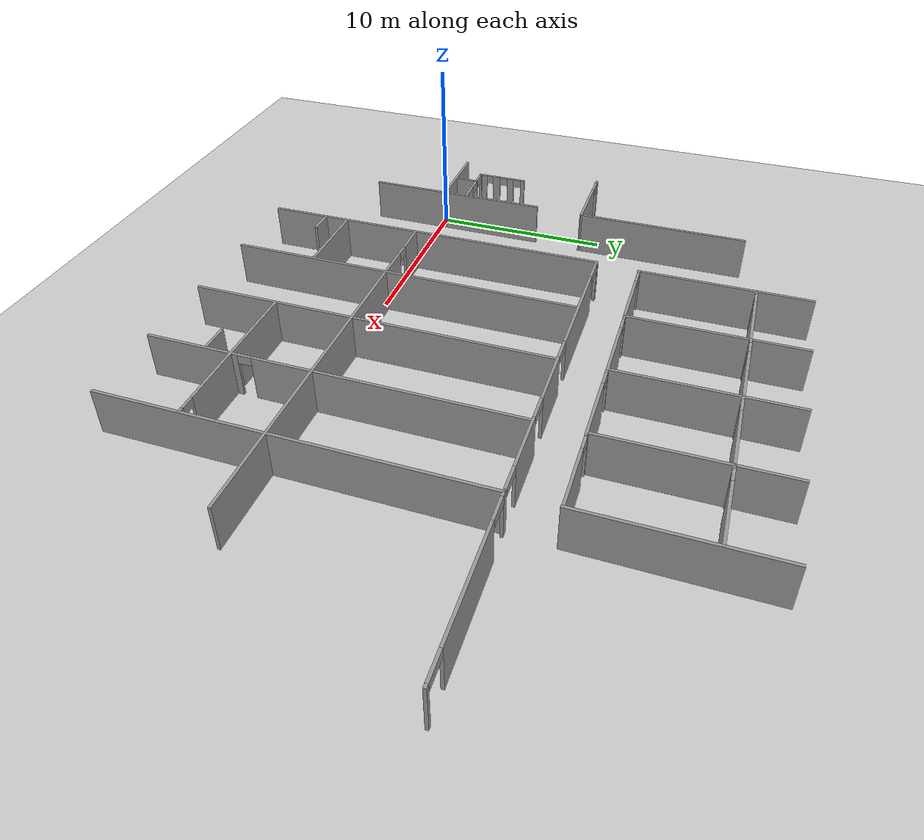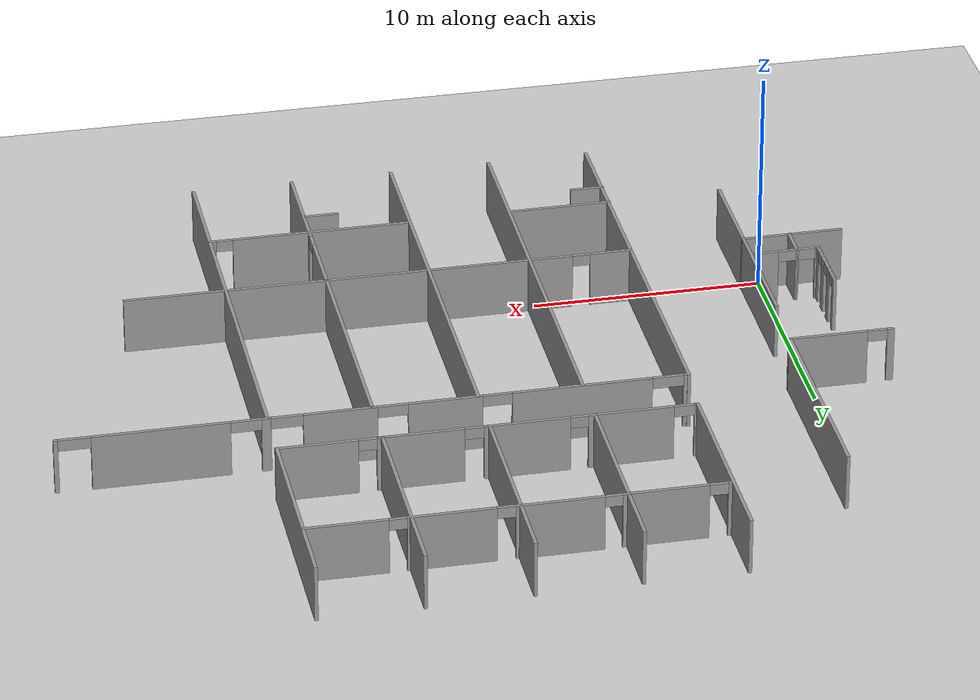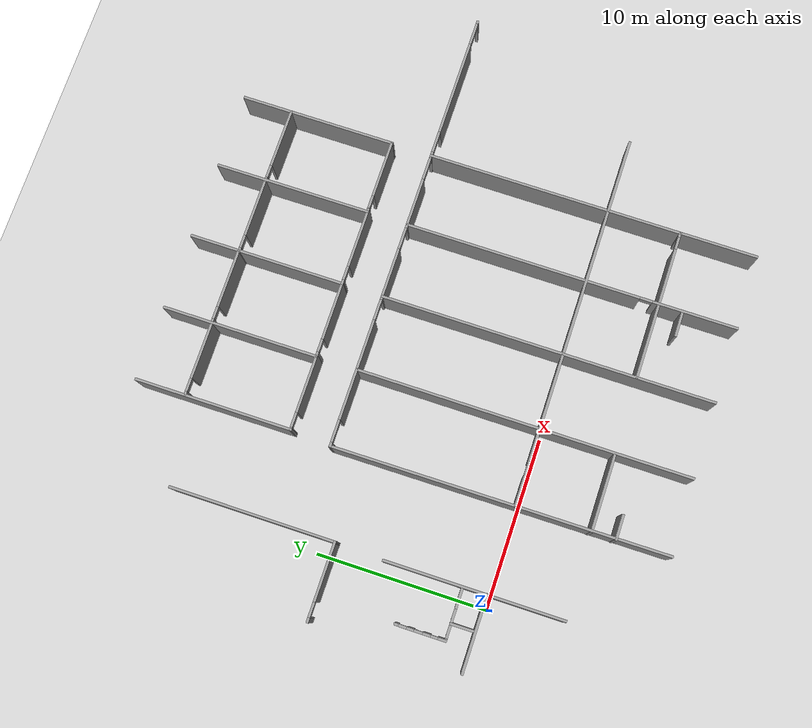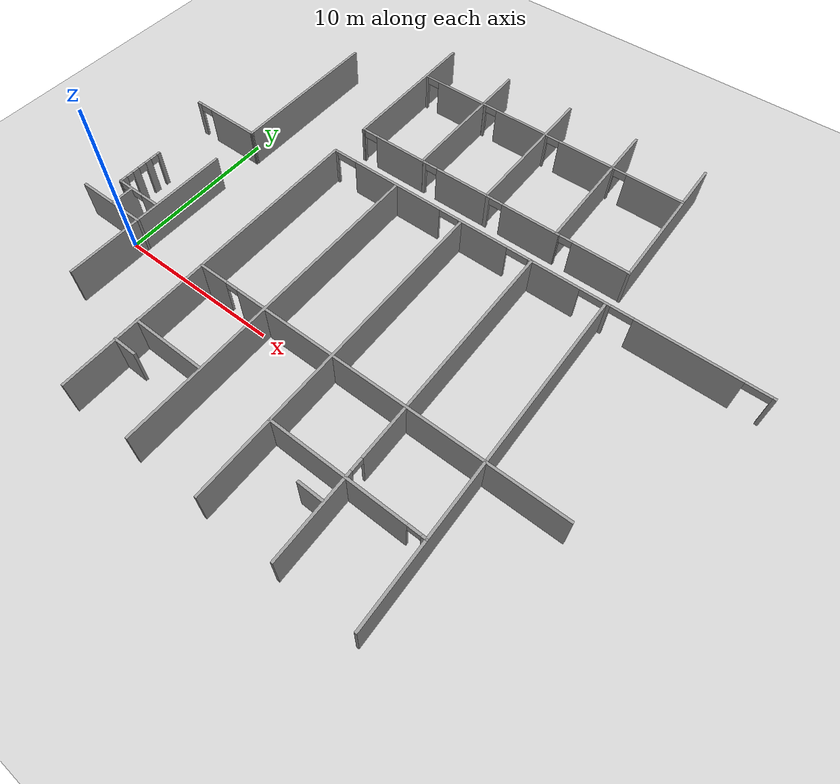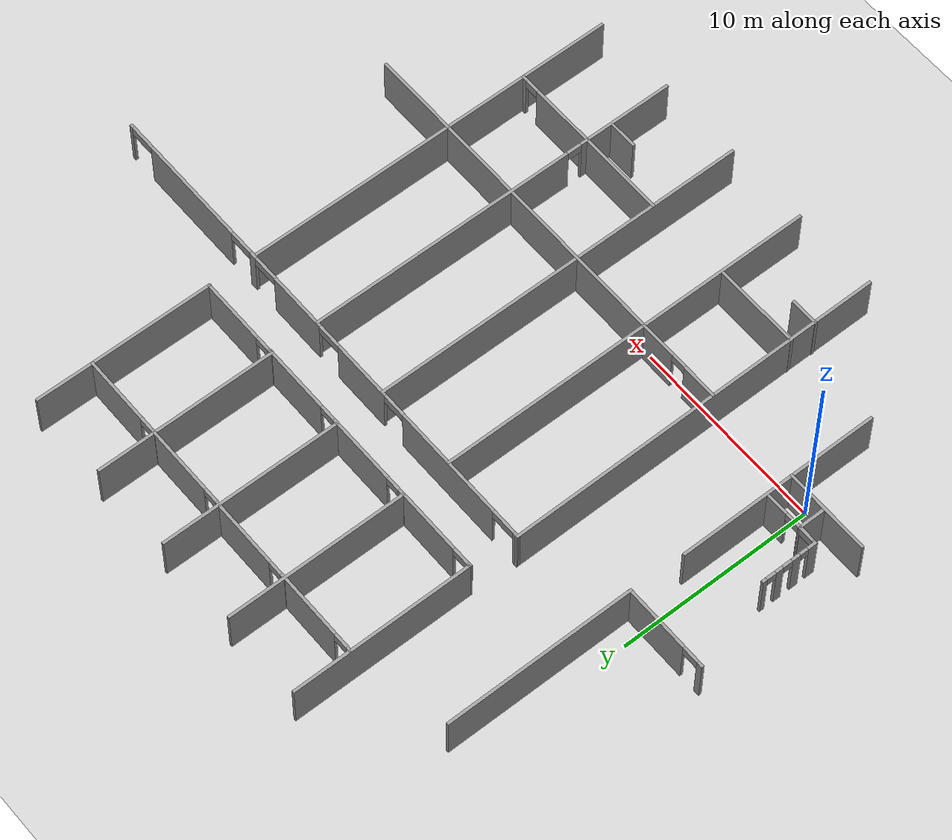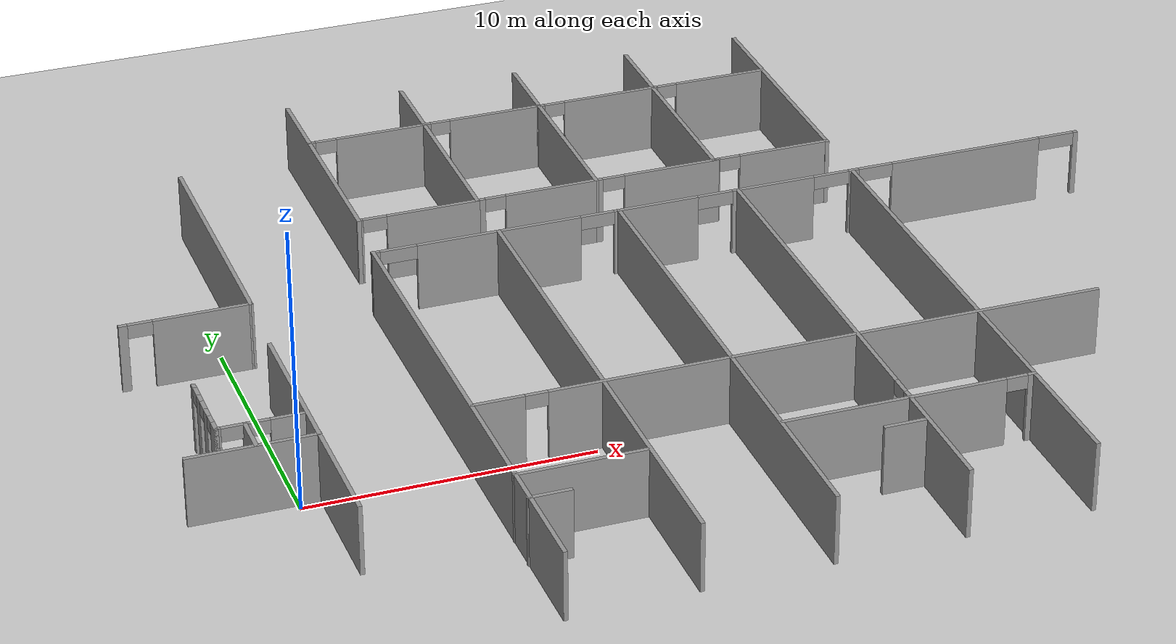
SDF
<sdf version="1.7">
 <world name="default">
  <model name="ground_plane">
   <static>1</static>
   <link name="link">
    <collision name="collision">
     <geometry><plane><normal>0 0 1</normal><size>100 100</size></plane></geometry>
     <surface>
      <contact><collide_bitmask>65535</collide_bitmask></contact>
      <friction><ode><mu>100</mu><mu2>50</mu2></ode></friction>
     </surface>
    </collision>
    <visual name="visual">
     <cast_shadows>0</cast_shadows>
     <geometry><plane><normal>0 0 1</normal><size>100 100</size></plane></geometry>
     <material>
      <script><uri>file://media/materials/scripts/gazebo.material</uri><name>Gazebo/Grey</name></script>
     </material>
    </visual>
   </link>
  </model>
  <model name="anglo_3_andar">
   <pose>-0.36557 -0.844839 0 0 -0 0</pose>
   <link name="Wall_233">
    <collision name="Wall_233_Collision">
     <geometry><box><size>10.5 0.15 2.5</size></box></geometry>
     <pose>0 0 1.25 0 -0 0</pose>
    </collision>
    <visual name="Wall_233_Visual">
     <pose>0 0 1.25 0 -0 0</pose>
     <geometry><box><size>10.5 0.15 2.5</size></box></geometry>
     <material>
      <script><uri>file://media/materials/scripts/gazebo.material</uri><name>Gazebo/Grey</name></script>
      <ambient>1 1 1 1</ambient>
     </material>
     <meta><layer>0</layer></meta>
    </visual>
    <pose>1.14771 1.85868 0 0 -0 1.5708</pose>
   </link>
   <link name="Wall_266">
    <pose>-1.85229 3.92868 0 0 -0 -1.5708</pose>
    <visual name="Wall_266_Visual_0">
     <pose>-1.38 0 1.25 0 -0 0</pose>
     <geometry><box><size>0.24 0.15 2.5</size></box></geometry>
     <material>
      <script><uri>file://media/materials/scripts/gazebo.material</uri><name>Gazebo/Grey</name></script>
      <ambient>1 1 1 1</ambient>
     </material>
     <meta><layer>0</layer></meta>
    </visual>
    <collision name="Wall_266_Collision_0">
     <geometry><box><size>0.24 0.15 2.5</size></box></geometry>
     <pose>-1.38 0 1.25 0 -0 0</pose>
    </collision>
    <visual name="Wall_266_Visual_1">
     <pose>-0.575 0 1.25 0 -0 0</pose>
     <geometry><box><size>0.41 0.15 2.5</size></box></geometry>
     <material>
      <script><uri>file://media/materials/scripts/gazebo.material</uri><name>Gazebo/Grey</name></script>
      <ambient>1 1 1 1</ambient>
     </material>
     <meta><layer>0</layer></meta>
    </visual>
    <collision name="Wall_266_Collision_1">
     <geometry><box><size>0.41 0.15 2.5</size></box></geometry>
     <pose>-0.575 0 1.25 0 -0 0</pose>
    </collision>
    <visual name="Wall_266_Visual_2">
     <pose>0.3525 0 1.25 0 -0 0</pose>
     <geometry><box><size>0.445 0.15 2.5</size></box></geometry>
     <material>
      <script><uri>file://media/materials/scripts/gazebo.material</uri><name>Gazebo/Grey</name></script>
      <ambient>1 1 1 1</ambient>
     </material>
     <meta><layer>0</layer></meta>
    </visual>
    <collision name="Wall_266_Collision_2">
     <geometry><box><size>0.445 0.15 2.5</size></box></geometry>
     <pose>0.3525 0 1.25 0 -0 0</pose>
    </collision>
    <visual name="Wall_266_Visual_3">
     <pose>1.2475 0 1.25 0 -0 0</pose>
     <geometry><box><size>0.505 0.15 2.5</size></box></geometry>
     <material>
      <script><uri>file://media/materials/scripts/gazebo.material</uri><name>Gazebo/Grey</name></script>
      <ambient>1 1 1 1</ambient>
     </material>
     <meta><layer>0</layer></meta>
    </visual>
    <collision name="Wall_266_Collision_3">
     <geometry><box><size>0.505 0.15 2.5</size></box></geometry>
     <pose>1.2475 0 1.25 0 -0 0</pose>
    </collision>
    <visual name="Wall_266_Visual_4">
     <pose>-1.02 0 2.25 0 -0 0</pose>
     <geometry><box><size>0.48 0.15 0.5</size></box></geometry>
     <material>
      <script><uri>file://media/materials/scripts/gazebo.material</uri><name>Gazebo/Grey</name></script>
      <ambient>1 1 1 1</ambient>
     </material>
     <meta><layer>0</layer></meta>
    </visual>
    <collision name="Wall_266_Collision_4">
     <geometry><box><size>0.48 0.15 0.5</size></box></geometry>
     <pose>-1.02 0 2.25 0 -0 0</pose>
    </collision>
    <visual name="Wall_266_Visual_5">
     <pose>-0.12 0 2.25 0 -0 0</pose>
     <geometry><box><size>0.5 0.15 0.5</size></box></geometry>
     <material>
      <script><uri>file://media/materials/scripts/gazebo.material</uri><name>Gazebo/Grey</name></script>
      <ambient>1 1 1 1</ambient>
     </material>
     <meta><layer>0</layer></meta>
    </visual>
    <collision name="Wall_266_Collision_5">
     <geometry><box><size>0.5 0.15 0.5</size></box></geometry>
     <pose>-0.12 0 2.25 0 -0 0</pose>
    </collision>
    <visual name="Wall_266_Visual_6">
     <pose>0.785 0 2.25 0 -0 0</pose>
     <geometry><box><size>0.42 0.15 0.5</size></box></geometry>
     <material>
      <script><uri>file://media/materials/scripts/gazebo.material</uri><name>Gazebo/Grey</name></script>
      <ambient>1 1 1 1</ambient>
     </material>
     <meta><layer>0</layer></meta>
    </visual>
    <collision name="Wall_266_Collision_6">
     <geometry><box><size>0.42 0.15 0.5</size></box></geometry>
     <pose>0.785 0 2.25 0 -0 0</pose>
    </collision>
   </link>
   <link name="Wall_268">
    <pose>-0.427293 2.50368 0 0 -0 0</pose>
    <visual name="Wall_268_Visual_0">
     <pose>-1.39 0 1.25 0 -0 0</pose>
     <geometry><box><size>0.22 0.15 2.5</size></box></geometry>
     <material>
      <script><uri>file://media/materials/scripts/gazebo.material</uri><name>Gazebo/Grey</name></script>
      <ambient>1 1 1 1</ambient>
     </material>
     <meta><layer>0</layer></meta>
    </visual>
    <collision name="Wall_268_Collision_0">
     <geometry><box><size>0.22 0.15 2.5</size></box></geometry>
     <pose>-1.39 0 1.25 0 -0 0</pose>
    </collision>
    <visual name="Wall_268_Visual_1">
     <pose>-0.47 0 1.25 0 -0 0</pose>
     <geometry><box><size>0.1 0.15 2.5</size></box></geometry>
     <material>
      <script><uri>file://media/materials/scripts/gazebo.material</uri><name>Gazebo/Grey</name></script>
      <ambient>1 1 1 1</ambient>
     </material>
     <meta><layer>0</layer></meta>
    </visual>
    <collision name="Wall_268_Collision_1">
     <geometry><box><size>0.1 0.15 2.5</size></box></geometry>
     <pose>-0.47 0 1.25 0 -0 0</pose>
    </collision>
    <visual name="Wall_268_Visual_2">
     <pose>0.925 0 1.25 0 -0 0</pose>
     <geometry><box><size>1.15 0.15 2.5</size></box></geometry>
     <material>
      <script><uri>file://media/materials/scripts/gazebo.material</uri><name>Gazebo/Grey</name></script>
      <ambient>1 1 1 1</ambient>
     </material>
     <meta><layer>0</layer></meta>
    </visual>
    <collision name="Wall_268_Collision_2">
     <geometry><box><size>1.15 0.15 2.5</size></box></geometry>
     <pose>0.925 0 1.25 0 -0 0</pose>
    </collision>
    <visual name="Wall_268_Visual_3">
     <pose>-0.9 0 2.25 0 -0 0</pose>
     <geometry><box><size>0.76 0.15 0.5</size></box></geometry>
     <material>
      <script><uri>file://media/materials/scripts/gazebo.material</uri><name>Gazebo/Grey</name></script>
      <ambient>1 1 1 1</ambient>
     </material>
     <meta><layer>0</layer></meta>
    </visual>
    <collision name="Wall_268_Collision_3">
     <geometry><box><size>0.76 0.15 0.5</size></box></geometry>
     <pose>-0.9 0 2.25 0 -0 0</pose>
    </collision>
    <visual name="Wall_268_Visual_4">
     <pose>-0.035 0 2.25 0 -0 0</pose>
     <geometry><box><size>0.77 0.15 0.5</size></box></geometry>
     <material>
      <script><uri>file://media/materials/scripts/gazebo.material</uri><name>Gazebo/Grey</name></script>
      <ambient>1 1 1 1</ambient>
     </material>
     <meta><layer>0</layer></meta>
    </visual>
    <collision name="Wall_268_Collision_4">
     <geometry><box><size>0.77 0.15 0.5</size></box></geometry>
     <pose>-0.035 0 2.25 0 -0 0</pose>
    </collision>
   </link>
   <link name="Wall_270">
    <collision name="Wall_270_Collision">
     <geometry><box><size>1.5 0.15 2.5</size></box></geometry>
     <pose>0 0 1.25 0 -0 0</pose>
    </collision>
    <visual name="Wall_270_Visual">
     <pose>0 0 1.25 0 -0 0</pose>
     <geometry><box><size>1.5 0.15 2.5</size></box></geometry>
     <material>
      <script><uri>file://media/materials/scripts/gazebo.material</uri><name>Gazebo/Grey</name></script>
      <ambient>1 1 1 1</ambient>
     </material>
     <meta><layer>0</layer></meta>
    </visual>
    <pose>-0.902293 1.82868 0 0 -0 -1.5708</pose>
   </link>
   <link name="Wall_272">
    <collision name="Wall_272_Collision">
     <geometry><box><size>4.5 0.15 2.5</size></box></geometry>
     <pose>0 0 1.25 0 -0 0</pose>
    </collision>
    <visual name="Wall_272_Visual">
     <pose>0 0 1.25 0 -0 0</pose>
     <geometry><box><size>4.5 0.15 2.5</size></box></geometry>
     <material>
      <script><uri>file://media/materials/scripts/gazebo.material</uri><name>Gazebo/Grey</name></script>
      <ambient>1 1 1 1</ambient>
     </material>
     <meta><layer>0</layer></meta>
    </visual>
    <pose>-1.01729 1.12368 0 0 -0 0</pose>
   </link>
   <link name="Wall_38">
    <collision name="Wall_38_Collision">
     <geometry><box><size>9.25 0.15 2.5</size></box></geometry>
     <pose>0 0 1.25 0 -0 0</pose>
    </collision>
    <visual name="Wall_38_Visual">
     <pose>0 0 1.25 0 -0 0</pose>
     <geometry><box><size>9.25 0.15 2.5</size></box></geometry>
     <material>
      <script><uri>file://media/materials/scripts/gazebo.material</uri><name>Gazebo/Grey</name></script>
      <ambient>1 1 1 1</ambient>
     </material>
     <meta><layer>0</layer></meta>
    </visual>
    <pose>23.9777 18.8137 0 0 -0 -1.5708</pose>
   </link>
   <link name="Wall_46">
    <collision name="Wall_46_Collision">
     <geometry><box><size>9.25 0.15 2.5</size></box></geometry>
     <pose>0 0 1.25 0 -0 0</pose>
    </collision>
    <visual name="Wall_46_Visual">
     <pose>0 0 1.25 0 -0 0</pose>
     <geometry><box><size>9.25 0.15 2.5</size></box></geometry>
     <material>
      <script><uri>file://media/materials/scripts/gazebo.material</uri><name>Gazebo/Grey</name></script>
      <ambient>1 1 1 1</ambient>
     </material>
     <meta><layer>0</layer></meta>
    </visual>
    <pose>19.5777 18.8337 0 0 -0 -1.5686</pose>
   </link>
   <link name="Wall_506">
    <pose>19.4577 11.8537 0 0 -0 -3.14084</pose>
    <visual name="Wall_506_Visual_0">
     <pose>-13.3091 0 1.25 0 -0 0</pose>
     <geometry><box><size>0.191801 0.15 2.5</size></box></geometry>
     <material>
      <script><uri>file://media/materials/scripts/gazebo.material</uri><name>Gazebo/Grey</name></script>
      <ambient>1 1 1 1</ambient>
     </material>
     <meta><layer>0</layer></meta>
    </visual>
    <collision name="Wall_506_Collision_0">
     <geometry><box><size>0.191801 0.15 2.5</size></box></geometry>
     <pose>-13.3091 0 1.25 0 -0 0</pose>
    </collision>
    <visual name="Wall_506_Visual_1">
     <pose>-8.94267 0 1.25 0 -0 0</pose>
     <geometry><box><size>5.80105 0.15 2.5</size></box></geometry>
     <material>
      <script><uri>file://media/materials/scripts/gazebo.material</uri><name>Gazebo/Grey</name></script>
      <ambient>1 1 1 1</ambient>
     </material>
     <meta><layer>0</layer></meta>
    </visual>
    <collision name="Wall_506_Collision_1">
     <geometry><box><size>5.80105 0.15 2.5</size></box></geometry>
     <pose>-8.94267 0 1.25 0 -0 0</pose>
    </collision>
    <visual name="Wall_506_Visual_2">
     <pose>-4.55522 0 1.25 0 -0 0</pose>
     <geometry><box><size>0.393856 0.15 2.5</size></box></geometry>
     <material>
      <script><uri>file://media/materials/scripts/gazebo.material</uri><name>Gazebo/Grey</name></script>
      <ambient>1 1 1 1</ambient>
     </material>
     <meta><layer>0</layer></meta>
    </visual>
    <collision name="Wall_506_Collision_2">
     <geometry><box><size>0.393856 0.15 2.5</size></box></geometry>
     <pose>-4.55522 0 1.25 0 -0 0</pose>
    </collision>
    <visual name="Wall_506_Visual_3">
     <pose>-1.45079 0 1.25 0 -0 0</pose>
     <geometry><box><size>3.11499 0.15 2.5</size></box></geometry>
     <material>
      <script><uri>file://media/materials/scripts/gazebo.material</uri><name>Gazebo/Grey</name></script>
      <ambient>1 1 1 1</ambient>
     </material>
     <meta><layer>0</layer></meta>
    </visual>
    <collision name="Wall_506_Collision_3">
     <geometry><box><size>3.11499 0.15 2.5</size></box></geometry>
     <pose>-1.45079 0 1.25 0 -0 0</pose>
    </collision>
    <visual name="Wall_506_Visual_4">
     <pose>2.98168 0 1.25 0 -0 0</pose>
     <geometry><box><size>3.14995 0.15 2.5</size></box></geometry>
     <material>
      <script><uri>file://media/materials/scripts/gazebo.material</uri><name>Gazebo/Grey</name></script>
      <ambient>1 1 1 1</ambient>
     </material>
     <meta><layer>0</layer></meta>
    </visual>
    <collision name="Wall_506_Collision_4">
     <geometry><box><size>3.14995 0.15 2.5</size></box></geometry>
     <pose>2.98168 0 1.25 0 -0 0</pose>
    </collision>
    <visual name="Wall_506_Visual_5">
     <pose>8.78482 0 1.25 0 -0 0</pose>
     <geometry><box><size>5.97634 0.15 2.5</size></box></geometry>
     <material>
      <script><uri>file://media/materials/scripts/gazebo.material</uri><name>Gazebo/Grey</name></script>
      <ambient>1 1 1 1</ambient>
     </material>
     <meta><layer>0</layer></meta>
    </visual>
    <collision name="Wall_506_Collision_5">
     <geometry><box><size>5.97634 0.15 2.5</size></box></geometry>
     <pose>8.78482 0 1.25 0 -0 0</pose>
    </collision>
    <visual name="Wall_506_Visual_6">
     <pose>13.254 0 1.25 0 -0 0</pose>
     <geometry><box><size>0.302005 0.15 2.5</size></box></geometry>
     <material>
      <script><uri>file://media/materials/scripts/gazebo.material</uri><name>Gazebo/Grey</name></script>
      <ambient>1 1 1 1</ambient>
     </material>
     <meta><layer>0</layer></meta>
    </visual>
    <collision name="Wall_506_Collision_6">
     <geometry><box><size>0.302005 0.15 2.5</size></box></geometry>
     <pose>13.254 0 1.25 0 -0 0</pose>
    </collision>
    <visual name="Wall_506_Visual_7">
     <pose>-12.5282 0 2.25 0 -0 0</pose>
     <geometry><box><size>1.37 0.15 0.5</size></box></geometry>
     <material>
      <script><uri>file://media/materials/scripts/gazebo.material</uri><name>Gazebo/Grey</name></script>
      <ambient>1 1 1 1</ambient>
     </material>
     <meta><layer>0</layer></meta>
    </visual>
    <collision name="Wall_506_Collision_7">
     <geometry><box><size>1.37 0.15 0.5</size></box></geometry>
     <pose>-12.5282 0 2.25 0 -0 0</pose>
    </collision>
    <visual name="Wall_506_Visual_8">
     <pose>-5.39715 0 2.25 0 -0 0</pose>
     <geometry><box><size>1.29 0.15 0.5</size></box></geometry>
     <material>
      <script><uri>file://media/materials/scripts/gazebo.material</uri><name>Gazebo/Grey</name></script>
      <ambient>1 1 1 1</ambient>
     </material>
     <meta><layer>0</layer></meta>
    </visual>
    <collision name="Wall_506_Collision_8">
     <geometry><box><size>1.29 0.15 0.5</size></box></geometry>
     <pose>-5.39715 0 2.25 0 -0 0</pose>
    </collision>
    <visual name="Wall_506_Visual_9">
     <pose>-3.68329 0 2.25 0 -0 0</pose>
     <geometry><box><size>1.35 0.15 0.5</size></box></geometry>
     <material>
      <script><uri>file://media/materials/scripts/gazebo.material</uri><name>Gazebo/Grey</name></script>
      <ambient>1 1 1 1</ambient>
     </material>
     <meta><layer>0</layer></meta>
    </visual>
    <collision name="Wall_506_Collision_9">
     <geometry><box><size>1.35 0.15 0.5</size></box></geometry>
     <pose>-3.68329 0 2.25 0 -0 0</pose>
    </collision>
    <visual name="Wall_506_Visual_10">
     <pose>0.756703 0 2.25 0 -0 0</pose>
     <geometry><box><size>1.3 0.15 0.5</size></box></geometry>
     <material>
      <script><uri>file://media/materials/scripts/gazebo.material</uri><name>Gazebo/Grey</name></script>
      <ambient>1 1 1 1</ambient>
     </material>
     <meta><layer>0</layer></meta>
    </visual>
    <collision name="Wall_506_Collision_10">
     <geometry><box><size>1.3 0.15 0.5</size></box></geometry>
     <pose>0.756703 0 2.25 0 -0 0</pose>
    </collision>
    <visual name="Wall_506_Visual_11">
     <pose>5.17665 0 2.25 0 -0 0</pose>
     <geometry><box><size>1.24 0.15 0.5</size></box></geometry>
     <material>
      <script><uri>file://media/materials/scripts/gazebo.material</uri><name>Gazebo/Grey</name></script>
      <ambient>1 1 1 1</ambient>
     </material>
     <meta><layer>0</layer></meta>
    </visual>
    <collision name="Wall_506_Collision_11">
     <geometry><box><size>1.24 0.15 0.5</size></box></geometry>
     <pose>5.17665 0 2.25 0 -0 0</pose>
    </collision>
    <visual name="Wall_506_Visual_12">
     <pose>12.438 0 2.25 0 -0 0</pose>
     <geometry><box><size>1.33 0.15 0.5</size></box></geometry>
     <material>
      <script><uri>file://media/materials/scripts/gazebo.material</uri><name>Gazebo/Grey</name></script>
      <ambient>1 1 1 1</ambient>
     </material>
     <meta><layer>0</layer></meta>
    </visual>
    <collision name="Wall_506_Collision_12">
     <geometry><box><size>1.33 0.15 0.5</size></box></geometry>
     <pose>12.438 0 2.25 0 -0 0</pose>
    </collision>
   </link>
   <link name="Wall_508">
    <collision name="Wall_508_Collision">
     <geometry><box><size>19.8202 0.15 2.5</size></box></geometry>
     <pose>0 0 1.25 0 -0 0</pose>
    </collision>
    <visual name="Wall_508_Visual">
     <pose>0 0 1.25 0 -0 0</pose>
     <geometry><box><size>19.8202 0.15 2.5</size></box></geometry>
     <material>
      <script><uri>file://media/materials/scripts/gazebo.material</uri><name>Gazebo/Grey</name></script>
      <ambient>1 1 1 1</ambient>
     </material>
     <meta><layer>0</layer></meta>
    </visual>
    <pose>6.17271 2.01868 0 0 -0 -1.56622</pose>
   </link>
   <link name="Wall_533">
    <collision name="Wall_533_Collision">
     <geometry><box><size>19.75 0.15 2.5</size></box></geometry>
     <pose>0 0 1.25 0 -0 0</pose>
    </collision>
    <visual name="Wall_533_Visual">
     <pose>0 0 1.25 0 -0 0</pose>
     <geometry><box><size>19.75 0.15 2.5</size></box></geometry>
     <material>
      <script><uri>file://media/materials/scripts/gazebo.material</uri><name>Gazebo/Grey</name></script>
      <ambient>1 1 1 1</ambient>
     </material>
     <meta><layer>0</layer></meta>
    </visual>
    <pose>23.9577 2.05368 0 0 -0 -1.5708</pose>
   </link>
   <link name="Wall_535">
    <pose>17.2677 1.10368 0 0 -0 0</pose>
    <visual name="Wall_535_Visual_0">
     <pose>-10.205 0 1.25 0 -0 0</pose>
     <geometry><box><size>1.84 0.15 2.5</size></box></geometry>
     <material>
      <script><uri>file://media/materials/scripts/gazebo.material</uri><name>Gazebo/Grey</name></script>
      <ambient>1 1 1 1</ambient>
     </material>
     <meta><layer>0</layer></meta>
    </visual>
    <collision name="Wall_535_Collision_0">
     <geometry><box><size>1.84 0.15 2.5</size></box></geometry>
     <pose>-10.205 0 1.25 0 -0 0</pose>
    </collision>
    <visual name="Wall_535_Visual_1">
     <pose>1.31 0 1.25 0 -0 0</pose>
     <geometry><box><size>19.63 0.15 2.5</size></box></geometry>
     <material>
      <script><uri>file://media/materials/scripts/gazebo.material</uri><name>Gazebo/Grey</name></script>
      <ambient>1 1 1 1</ambient>
     </material>
     <meta><layer>0</layer></meta>
    </visual>
    <collision name="Wall_535_Collision_1">
     <geometry><box><size>19.63 0.15 2.5</size></box></geometry>
     <pose>1.31 0 1.25 0 -0 0</pose>
    </collision>
    <visual name="Wall_535_Visual_2">
     <pose>-8.895 0 2.25 0 -0 0</pose>
     <geometry><box><size>0.78 0.15 0.5</size></box></geometry>
     <material>
      <script><uri>file://media/materials/scripts/gazebo.material</uri><name>Gazebo/Grey</name></script>
      <ambient>1 1 1 1</ambient>
     </material>
     <meta><layer>0</layer></meta>
    </visual>
    <collision name="Wall_535_Collision_2">
     <geometry><box><size>0.78 0.15 0.5</size></box></geometry>
     <pose>-8.895 0 2.25 0 -0 0</pose>
    </collision>
   </link>
   <link name="Wall_537">
    <pose>19.5677 2.01368 0 0 -0 -1.5708</pose>
    <visual name="Wall_537_Visual_0">
     <pose>-2.89 0 1.25 0 -0 0</pose>
     <geometry><box><size>13.97 0.15 2.5</size></box></geometry>
     <material>
      <script><uri>file://media/materials/scripts/gazebo.material</uri><name>Gazebo/Grey</name></script>
      <ambient>1 1 1 1</ambient>
     </material>
     <meta><layer>0</layer></meta>
    </visual>
    <collision name="Wall_537_Collision_0">
     <geometry><box><size>13.97 0.15 2.5</size></box></geometry>
     <pose>-2.89 0 1.25 0 -0 0</pose>
    </collision>
    <visual name="Wall_537_Visual_1">
     <pose>7.355 0 1.25 0 -0 0</pose>
     <geometry><box><size>5.04 0.15 2.5</size></box></geometry>
     <material>
      <script><uri>file://media/materials/scripts/gazebo.material</uri><name>Gazebo/Grey</name></script>
      <ambient>1 1 1 1</ambient>
     </material>
     <meta><layer>0</layer></meta>
    </visual>
    <collision name="Wall_537_Collision_1">
     <geometry><box><size>5.04 0.15 2.5</size></box></geometry>
     <pose>7.355 0 1.25 0 -0 0</pose>
    </collision>
    <visual name="Wall_537_Visual_2">
     <pose>4.465 0 2.25 0 -0 0</pose>
     <geometry><box><size>0.74 0.15 0.5</size></box></geometry>
     <material>
      <script><uri>file://media/materials/scripts/gazebo.material</uri><name>Gazebo/Grey</name></script>
      <ambient>1 1 1 1</ambient>
     </material>
     <meta><layer>0</layer></meta>
    </visual>
    <collision name="Wall_537_Collision_2">
     <geometry><box><size>0.74 0.15 0.5</size></box></geometry>
     <pose>4.465 0 2.25 0 -0 0</pose>
    </collision>
   </link>
   <link name="Wall_539">
    <collision name="Wall_539_Collision">
     <geometry><box><size>19.75 0.15 2.5</size></box></geometry>
     <pose>0 0 1.25 0 -0 0</pose>
    </collision>
    <visual name="Wall_539_Visual">
     <pose>0 0 1.25 0 -0 0</pose>
     <geometry><box><size>19.75 0.15 2.5</size></box></geometry>
     <material>
      <script><uri>file://media/materials/scripts/gazebo.material</uri><name>Gazebo/Grey</name></script>
      <ambient>1 1 1 1</ambient>
     </material>
     <meta><layer>0</layer></meta>
    </visual>
    <pose>15.0977 2.03368 0 0 -0 -1.5708</pose>
   </link>
   <link name="Wall_541">
    <collision name="Wall_541_Collision">
     <geometry><box><size>19.75 0.15 2.5</size></box></geometry>
     <pose>0 0 1.25 0 -0 0</pose>
    </collision>
    <visual name="Wall_541_Visual">
     <pose>0 0 1.25 0 -0 0</pose>
     <geometry><box><size>19.75 0.15 2.5</size></box></geometry>
     <material>
      <script><uri>file://media/materials/scripts/gazebo.material</uri><name>Gazebo/Grey</name></script>
      <ambient>1 1 1 1</ambient>
     </material>
     <meta><layer>0</layer></meta>
    </visual>
    <pose>10.6577 2.03368 0 0 -0 -1.5708</pose>
   </link>
   <link name="Wall_543">
    <collision name="Wall_543_Collision">
     <geometry><box><size>4.5 0.15 2.5</size></box></geometry>
     <pose>0 0 1.25 0 -0 0</pose>
    </collision>
    <visual name="Wall_543_Visual">
     <pose>0 0 1.25 0 -0 0</pose>
     <geometry><box><size>4.5 0.15 2.5</size></box></geometry>
     <material>
      <script><uri>file://media/materials/scripts/gazebo.material</uri><name>Gazebo/Grey</name></script>
      <ambient>1 1 1 1</ambient>
     </material>
     <meta><layer>0</layer></meta>
    </visual>
    <pose>8.35271 -3.27632 0 0 -0 0</pose>
   </link>
   <link name="Wall_548">
    <collision name="Wall_548_Collision">
     <geometry><box><size>1.5 0.15 2.5</size></box></geometry>
     <pose>0 0 1.25 0 -0 0</pose>
    </collision>
    <visual name="Wall_548_Visual">
     <pose>0 0 1.25 0 -0 0</pose>
     <geometry><box><size>1.5 0.15 2.5</size></box></geometry>
     <material>
      <script><uri>file://media/materials/scripts/gazebo.material</uri><name>Gazebo/Grey</name></script>
      <ambient>1 1 1 1</ambient>
     </material>
     <meta><layer>0</layer></meta>
    </visual>
    <pose>6.84271 -4.65632 0 0 -0 0</pose>
   </link>
   <link name="Wall_55">
    <pose>21.7527 14.2837 0 0 -0 0</pose>
    <visual name="Wall_55_Visual_0">
     <pose>-2.09 0 1.25 0 -0 0</pose>
     <geometry><box><size>0.32 0.15 2.5</size></box></geometry>
     <material>
      <script><uri>file://media/materials/scripts/gazebo.material</uri><name>Gazebo/Grey</name></script>
      <ambient>1 1 1 1</ambient>
     </material>
     <meta><layer>0</layer></meta>
    </visual>
    <collision name="Wall_55_Collision_0">
     <geometry><box><size>0.32 0.15 2.5</size></box></geometry>
     <pose>-2.09 0 1.25 0 -0 0</pose>
    </collision>
    <visual name="Wall_55_Visual_1">
     <pose>0.545 0 1.25 0 -0 0</pose>
     <geometry><box><size>3.41 0.15 2.5</size></box></geometry>
     <material>
      <script><uri>file://media/materials/scripts/gazebo.material</uri><name>Gazebo/Grey</name></script>
      <ambient>1 1 1 1</ambient>
     </material>
     <meta><layer>0</layer></meta>
    </visual>
    <collision name="Wall_55_Collision_1">
     <geometry><box><size>3.41 0.15 2.5</size></box></geometry>
     <pose>0.545 0 1.25 0 -0 0</pose>
    </collision>
    <visual name="Wall_55_Visual_2">
     <pose>-1.545 0 2.25 0 -0 0</pose>
     <geometry><box><size>0.77 0.15 0.5</size></box></geometry>
     <material>
      <script><uri>file://media/materials/scripts/gazebo.material</uri><name>Gazebo/Grey</name></script>
      <ambient>1 1 1 1</ambient>
     </material>
     <meta><layer>0</layer></meta>
    </visual>
    <collision name="Wall_55_Collision_2">
     <geometry><box><size>0.77 0.15 0.5</size></box></geometry>
     <pose>-1.545 0 2.25 0 -0 0</pose>
    </collision>
   </link>
   <link name="Wall_57">
    <pose>21.7527 20.4987 0 0 -0 -0.002268</pose>
    <visual name="Wall_57_Visual_0">
     <pose>-2.14009 0 1.25 0 -0 0</pose>
     <geometry><box><size>0.27984 0.15 2.5</size></box></geometry>
     <material>
      <script><uri>file://media/materials/scripts/gazebo.material</uri><name>Gazebo/Grey</name></script>
      <ambient>1 1 1 1</ambient>
     </material>
     <meta><layer>0</layer></meta>
    </visual>
    <collision name="Wall_57_Collision_0">
     <geometry><box><size>0.27984 0.15 2.5</size></box></geometry>
     <pose>-2.14009 0 1.25 0 -0 0</pose>
    </collision>
    <visual name="Wall_57_Visual_1">
     <pose>0.509897 0 1.25 0 -0 0</pose>
     <geometry><box><size>3.54022 0.15 2.5</size></box></geometry>
     <material>
      <script><uri>file://media/materials/scripts/gazebo.material</uri><name>Gazebo/Grey</name></script>
      <ambient>1 1 1 1</ambient>
     </material>
     <meta><layer>0</layer></meta>
    </visual>
    <collision name="Wall_57_Collision_1">
     <geometry><box><size>3.54022 0.15 2.5</size></box></geometry>
     <pose>0.509897 0 1.25 0 -0 0</pose>
    </collision>
    <visual name="Wall_57_Visual_2">
     <pose>-1.63019 0 2.25 0 -0 0</pose>
     <geometry><box><size>0.739955 0.15 0.5</size></box></geometry>
     <material>
      <script><uri>file://media/materials/scripts/gazebo.material</uri><name>Gazebo/Grey</name></script>
      <ambient>1 1 1 1</ambient>
     </material>
     <meta><layer>0</layer></meta>
    </visual>
    <collision name="Wall_57_Collision_2">
     <geometry><box><size>0.739955 0.15 0.5</size></box></geometry>
     <pose>-1.63019 0 2.25 0 -0 0</pose>
    </collision>
   </link>
   <link name="Wall_573">
    <collision name="Wall_573_Collision">
     <geometry><box><size>1.5 0.15 2.5</size></box></geometry>
     <pose>0 0 1.25 0 -0 0</pose>
    </collision>
    <visual name="Wall_573_Visual">
     <pose>0 0 1.25 0 -0 0</pose>
     <geometry><box><size>1.5 0.15 2.5</size></box></geometry>
     <material>
      <script><uri>file://media/materials/scripts/gazebo.material</uri><name>Gazebo/Grey</name></script>
      <ambient>1 1 1 1</ambient>
     </material>
     <meta><layer>0</layer></meta>
    </visual>
    <pose>18.7827 -4.60632 0 0 -0 0</pose>
   </link>
   <link name="Wall_581">
    <pose>19.5227 -3.20632 0 0 -0 0</pose>
    <visual name="Wall_581_Visual_0">
     <pose>-0.535 0 1.25 0 -0 0</pose>
     <geometry><box><size>7.93 0.15 2.5</size></box></geometry>
     <material>
      <script><uri>file://media/materials/scripts/gazebo.material</uri><name>Gazebo/Grey</name></script>
      <ambient>1 1 1 1</ambient>
     </material>
     <meta><layer>0</layer></meta>
    </visual>
    <collision name="Wall_581_Collision_0">
     <geometry><box><size>7.93 0.15 2.5</size></box></geometry>
     <pose>-0.535 0 1.25 0 -0 0</pose>
    </collision>
    <visual name="Wall_581_Visual_1">
     <pose>4.335 0 1.25 0 -0 0</pose>
     <geometry><box><size>0.330001 0.15 2.5</size></box></geometry>
     <material>
      <script><uri>file://media/materials/scripts/gazebo.material</uri><name>Gazebo/Grey</name></script>
      <ambient>1 1 1 1</ambient>
     </material>
     <meta><layer>0</layer></meta>
    </visual>
    <collision name="Wall_581_Collision_1">
     <geometry><box><size>0.330001 0.15 2.5</size></box></geometry>
     <pose>4.335 0 1.25 0 -0 0</pose>
    </collision>
    <visual name="Wall_581_Visual_2">
     <pose>3.8 0 2.25 0 -0 0</pose>
     <geometry><box><size>0.74 0.15 0.5</size></box></geometry>
     <material>
      <script><uri>file://media/materials/scripts/gazebo.material</uri><name>Gazebo/Grey</name></script>
      <ambient>1 1 1 1</ambient>
     </material>
     <meta><layer>0</layer></meta>
    </visual>
    <collision name="Wall_581_Collision_2">
     <geometry><box><size>0.74 0.15 0.5</size></box></geometry>
     <pose>3.8 0 2.25 0 -0 0</pose>
    </collision>
   </link>
   <link name="Wall_59">
    <collision name="Wall_59_Collision">
     <geometry><box><size>9.25 0.15 2.5</size></box></geometry>
     <pose>0 0 1.25 0 -0 0</pose>
    </collision>
    <visual name="Wall_59_Visual">
     <pose>0 0 1.25 0 -0 0</pose>
     <geometry><box><size>9.25 0.15 2.5</size></box></geometry>
     <material>
      <script><uri>file://media/materials/scripts/gazebo.material</uri><name>Gazebo/Grey</name></script>
      <ambient>1 1 1 1</ambient>
     </material>
     <meta><layer>0</layer></meta>
    </visual>
    <pose>15.0977 18.8137 0 0 -0 -1.5708</pose>
   </link>
   <link name="Wall_61">
    <pose>17.3977 14.2637 0 0 -0 0</pose>
    <visual name="Wall_61_Visual_0">
     <pose>-2.22 0 1.25 0 -0 0</pose>
     <geometry><box><size>0.31 0.15 2.5</size></box></geometry>
     <material>
      <script><uri>file://media/materials/scripts/gazebo.material</uri><name>Gazebo/Grey</name></script>
      <ambient>1 1 1 1</ambient>
     </material>
     <meta><layer>0</layer></meta>
    </visual>
    <collision name="Wall_61_Collision_0">
     <geometry><box><size>0.31 0.15 2.5</size></box></geometry>
     <pose>-2.22 0 1.25 0 -0 0</pose>
    </collision>
    <visual name="Wall_61_Visual_1">
     <pose>0.57 0 1.25 0 -0 0</pose>
     <geometry><box><size>3.61 0.15 2.5</size></box></geometry>
     <material>
      <script><uri>file://media/materials/scripts/gazebo.material</uri><name>Gazebo/Grey</name></script>
      <ambient>1 1 1 1</ambient>
     </material>
     <meta><layer>0</layer></meta>
    </visual>
    <collision name="Wall_61_Collision_1">
     <geometry><box><size>3.61 0.15 2.5</size></box></geometry>
     <pose>0.57 0 1.25 0 -0 0</pose>
    </collision>
    <visual name="Wall_61_Visual_2">
     <pose>-1.65 0 2.25 0 -0 0</pose>
     <geometry><box><size>0.83 0.15 0.5</size></box></geometry>
     <material>
      <script><uri>file://media/materials/scripts/gazebo.material</uri><name>Gazebo/Grey</name></script>
      <ambient>1 1 1 1</ambient>
     </material>
     <meta><layer>0</layer></meta>
    </visual>
    <collision name="Wall_61_Collision_2">
     <geometry><box><size>0.83 0.15 0.5</size></box></geometry>
     <pose>-1.65 0 2.25 0 -0 0</pose>
    </collision>
   </link>
   <link name="Wall_63">
    <pose>17.3077 20.4987 0 0 -0 0.002232</pose>
    <visual name="Wall_63_Visual_0">
     <pose>-2.16505 0 1.25 0 -0 0</pose>
     <geometry><box><size>0.299909 0.15 2.5</size></box></geometry>
     <material>
      <script><uri>file://media/materials/scripts/gazebo.material</uri><name>Gazebo/Grey</name></script>
      <ambient>1 1 1 1</ambient>
     </material>
     <meta><layer>0</layer></meta>
    </visual>
    <collision name="Wall_63_Collision_0">
     <geometry><box><size>0.299909 0.15 2.5</size></box></geometry>
     <pose>-2.16505 0 1.25 0 -0 0</pose>
    </collision>
    <visual name="Wall_63_Visual_1">
     <pose>0.539966 0 1.25 0 -0 0</pose>
     <geometry><box><size>3.55008 0.15 2.5</size></box></geometry>
     <material>
      <script><uri>file://media/materials/scripts/gazebo.material</uri><name>Gazebo/Grey</name></script>
      <ambient>1 1 1 1</ambient>
     </material>
     <meta><layer>0</layer></meta>
    </visual>
    <collision name="Wall_63_Collision_1">
     <geometry><box><size>3.55008 0.15 2.5</size></box></geometry>
     <pose>0.539966 0 1.25 0 -0 0</pose>
    </collision>
    <visual name="Wall_63_Visual_2">
     <pose>-1.62508 0 2.25 0 -0 0</pose>
     <geometry><box><size>0.780023 0.15 0.5</size></box></geometry>
     <material>
      <script><uri>file://media/materials/scripts/gazebo.material</uri><name>Gazebo/Grey</name></script>
      <ambient>1 1 1 1</ambient>
     </material>
     <meta><layer>0</layer></meta>
    </visual>
    <collision name="Wall_63_Collision_2">
     <geometry><box><size>0.780023 0.15 0.5</size></box></geometry>
     <pose>-1.62508 0 2.25 0 -0 0</pose>
    </collision>
   </link>
   <link name="Wall_65">
    <collision name="Wall_65_Collision">
     <geometry><box><size>9.25 0.15 2.5</size></box></geometry>
     <pose>0 0 1.25 0 -0 0</pose>
    </collision>
    <visual name="Wall_65_Visual">
     <pose>0 0 1.25 0 -0 0</pose>
     <geometry><box><size>9.25 0.15 2.5</size></box></geometry>
     <material>
      <script><uri>file://media/materials/scripts/gazebo.material</uri><name>Gazebo/Grey</name></script>
      <ambient>1 1 1 1</ambient>
     </material>
     <meta><layer>0</layer></meta>
    </visual>
    <pose>10.6577 18.8037 0 0 -0 -1.5708</pose>
   </link>
   <link name="Wall_67">
    <pose>12.8777 14.2587 0 0 -0 0.002252</pose>
    <visual name="Wall_67_Visual_0">
     <pose>-2.11522 0 1.25 0 -0 0</pose>
     <geometry><box><size>0.359571 0.15 2.5</size></box></geometry>
     <material>
      <script><uri>file://media/materials/scripts/gazebo.material</uri><name>Gazebo/Grey</name></script>
      <ambient>1 1 1 1</ambient>
     </material>
     <meta><layer>0</layer></meta>
    </visual>
    <collision name="Wall_67_Collision_0">
     <geometry><box><size>0.359571 0.15 2.5</size></box></geometry>
     <pose>-2.11522 0 1.25 0 -0 0</pose>
    </collision>
    <visual name="Wall_67_Visual_1">
     <pose>0.559808 0 1.25 0 -0 0</pose>
     <geometry><box><size>3.47039 0.15 2.5</size></box></geometry>
     <material>
      <script><uri>file://media/materials/scripts/gazebo.material</uri><name>Gazebo/Grey</name></script>
      <ambient>1 1 1 1</ambient>
     </material>
     <meta><layer>0</layer></meta>
    </visual>
    <collision name="Wall_67_Collision_1">
     <geometry><box><size>3.47039 0.15 2.5</size></box></geometry>
     <pose>0.559808 0 1.25 0 -0 0</pose>
    </collision>
    <visual name="Wall_67_Visual_2">
     <pose>-1.55541 0 2.25 0 -0 0</pose>
     <geometry><box><size>0.760045 0.15 0.5</size></box></geometry>
     <material>
      <script><uri>file://media/materials/scripts/gazebo.material</uri><name>Gazebo/Grey</name></script>
      <ambient>1 1 1 1</ambient>
     </material>
     <meta><layer>0</layer></meta>
    </visual>
    <collision name="Wall_67_Collision_2">
     <geometry><box><size>0.760045 0.15 0.5</size></box></geometry>
     <pose>-1.55541 0 2.25 0 -0 0</pose>
    </collision>
   </link>
   <link name="Wall_69">
    <pose>12.8327 20.5137 0 0 -0 0</pose>
    <visual name="Wall_69_Visual_0">
     <pose>-2.095 0 1.25 0 -0 0</pose>
     <geometry><box><size>0.309999 0.15 2.5</size></box></geometry>
     <material>
      <script><uri>file://media/materials/scripts/gazebo.material</uri><name>Gazebo/Grey</name></script>
      <ambient>1 1 1 1</ambient>
     </material>
     <meta><layer>0</layer></meta>
    </visual>
    <collision name="Wall_69_Collision_0">
     <geometry><box><size>0.309999 0.15 2.5</size></box></geometry>
     <pose>-2.095 0 1.25 0 -0 0</pose>
    </collision>
    <visual name="Wall_69_Visual_1">
     <pose>0.525 0 1.25 0 -0 0</pose>
     <geometry><box><size>3.45 0.15 2.5</size></box></geometry>
     <material>
      <script><uri>file://media/materials/scripts/gazebo.material</uri><name>Gazebo/Grey</name></script>
      <ambient>1 1 1 1</ambient>
     </material>
     <meta><layer>0</layer></meta>
    </visual>
    <collision name="Wall_69_Collision_1">
     <geometry><box><size>3.45 0.15 2.5</size></box></geometry>
     <pose>0.525 0 1.25 0 -0 0</pose>
    </collision>
    <visual name="Wall_69_Visual_2">
     <pose>-1.57 0 2.25 0 -0 0</pose>
     <geometry><box><size>0.74 0.15 0.5</size></box></geometry>
     <material>
      <script><uri>file://media/materials/scripts/gazebo.material</uri><name>Gazebo/Grey</name></script>
      <ambient>1 1 1 1</ambient>
     </material>
     <meta><layer>0</layer></meta>
    </visual>
    <collision name="Wall_69_Collision_2">
     <geometry><box><size>0.74 0.15 0.5</size></box></geometry>
     <pose>-1.57 0 2.25 0 -0 0</pose>
    </collision>
   </link>
   <link name="Wall_80">
    <pose>8.48271 14.2437 0 0 -0 0</pose>
    <visual name="Wall_80_Visual_0">
     <pose>-2.14 0 1.25 0 -0 0</pose>
     <geometry><box><size>0.22 0.15 2.5</size></box></geometry>
     <material>
      <script><uri>file://media/materials/scripts/gazebo.material</uri><name>Gazebo/Grey</name></script>
      <ambient>1 1 1 1</ambient>
     </material>
     <meta><layer>0</layer></meta>
    </visual>
    <collision name="Wall_80_Collision_0">
     <geometry><box><size>0.22 0.15 2.5</size></box></geometry>
     <pose>-2.14 0 1.25 0 -0 0</pose>
    </collision>
    <visual name="Wall_80_Visual_1">
     <pose>0.545 0 1.25 0 -0 0</pose>
     <geometry><box><size>3.41 0.15 2.5</size></box></geometry>
     <material>
      <script><uri>file://media/materials/scripts/gazebo.material</uri><name>Gazebo/Grey</name></script>
      <ambient>1 1 1 1</ambient>
     </material>
     <meta><layer>0</layer></meta>
    </visual>
    <collision name="Wall_80_Collision_1">
     <geometry><box><size>3.41 0.15 2.5</size></box></geometry>
     <pose>0.545 0 1.25 0 -0 0</pose>
    </collision>
    <visual name="Wall_80_Visual_2">
     <pose>-1.595 0 2.25 0 -0 0</pose>
     <geometry><box><size>0.87 0.15 0.5</size></box></geometry>
     <material>
      <script><uri>file://media/materials/scripts/gazebo.material</uri><name>Gazebo/Grey</name></script>
      <ambient>1 1 1 1</ambient>
     </material>
     <meta><layer>0</layer></meta>
    </visual>
    <collision name="Wall_80_Collision_2">
     <geometry><box><size>0.87 0.15 0.5</size></box></geometry>
     <pose>-1.595 0 2.25 0 -0 0</pose>
    </collision>
   </link>
   <link name="Wall_82">
    <pose>8.48271 20.4937 0 0 -0 0</pose>
    <visual name="Wall_82_Visual_0">
     <pose>-2.105 0 1.25 0 -0 0</pose>
     <geometry><box><size>0.29 0.15 2.5</size></box></geometry>
     <material>
      <script><uri>file://media/materials/scripts/gazebo.material</uri><name>Gazebo/Grey</name></script>
      <ambient>1 1 1 1</ambient>
     </material>
     <meta><layer>0</layer></meta>
    </visual>
    <collision name="Wall_82_Collision_0">
     <geometry><box><size>0.29 0.15 2.5</size></box></geometry>
     <pose>-2.105 0 1.25 0 -0 0</pose>
    </collision>
    <visual name="Wall_82_Visual_1">
     <pose>0.535 0 1.25 0 -0 0</pose>
     <geometry><box><size>3.43 0.15 2.5</size></box></geometry>
     <material>
      <script><uri>file://media/materials/scripts/gazebo.material</uri><name>Gazebo/Grey</name></script>
      <ambient>1 1 1 1</ambient>
     </material>
     <meta><layer>0</layer></meta>
    </visual>
    <collision name="Wall_82_Collision_1">
     <geometry><box><size>3.43 0.15 2.5</size></box></geometry>
     <pose>0.535 0 1.25 0 -0 0</pose>
    </collision>
    <visual name="Wall_82_Visual_2">
     <pose>-1.57 0 2.25 0 -0 0</pose>
     <geometry><box><size>0.78 0.15 0.5</size></box></geometry>
     <material>
      <script><uri>file://media/materials/scripts/gazebo.material</uri><name>Gazebo/Grey</name></script>
      <ambient>1 1 1 1</ambient>
     </material>
     <meta><layer>0</layer></meta>
    </visual>
    <collision name="Wall_82_Collision_2">
     <geometry><box><size>0.78 0.15 0.5</size></box></geometry>
     <pose>-1.57 0 2.25 0 -0 0</pose>
    </collision>
   </link>
   <link name="Wall_86">
    <collision name="Wall_86_Collision">
     <geometry><box><size>9.75 0.15 2.5</size></box></geometry>
     <pose>0 0 1.25 0 -0 0</pose>
    </collision>
    <visual name="Wall_86_Visual">
     <pose>0 0 1.25 0 -0 0</pose>
     <geometry><box><size>9.75 0.15 2.5</size></box></geometry>
     <material>
      <script><uri>file://media/materials/scripts/gazebo.material</uri><name>Gazebo/Grey</name></script>
      <ambient>1 1 1 1</ambient>
     </material>
     <meta><layer>0</layer></meta>
    </visual>
    <pose>1.25771 14.6637 0 0 -0 -1.5708</pose>
   </link>
   <link name="Wall_9">
    <collision name="Wall_9_Collision">
     <geometry><box><size>9.31001 0.15 2.5</size></box></geometry>
     <pose>0 0 1.25 0 -0 0</pose>
    </collision>
    <visual name="Wall_9_Visual">
     <pose>0 0 1.25 0 -0 0</pose>
     <geometry><box><size>9.31001 0.15 2.5</size></box></geometry>
     <material>
      <script><uri>file://media/materials/scripts/gazebo.material</uri><name>Gazebo/Grey</name></script>
      <ambient>1 1 1 1</ambient>
     </material>
     <meta><layer>0</layer></meta>
    </visual>
    <pose>6.30271 18.8137 0 0 -0 -1.5697</pose>
   </link>
   <link name="Wall_90">
    <pose>-0.972293 9.86868 0 0 -0 -0.002242</pose>
    <visual name="Wall_90_Visual_0">
     <pose>-2.14998 0 1.25 0 -0 0</pose>
     <geometry><box><size>0.310043 0.15 2.5</size></box></geometry>
     <material>
      <script><uri>file://media/materials/scripts/gazebo.material</uri><name>Gazebo/Grey</name></script>
      <ambient>1 1 1 1</ambient>
     </material>
     <meta><layer>0</layer></meta>
    </visual>
    <collision name="Wall_90_Collision_0">
     <geometry><box><size>0.310043 0.15 2.5</size></box></geometry>
     <pose>-2.14998 0 1.25 0 -0 0</pose>
    </collision>
    <visual name="Wall_90_Visual_1">
     <pose>0.585033 0 1.25 0 -0 0</pose>
     <geometry><box><size>3.43995 0.15 2.5</size></box></geometry>
     <material>
      <script><uri>file://media/materials/scripts/gazebo.material</uri><name>Gazebo/Grey</name></script>
      <ambient>1 1 1 1</ambient>
     </material>
     <meta><layer>0</layer></meta>
    </visual>
    <collision name="Wall_90_Collision_1">
     <geometry><box><size>3.43995 0.15 2.5</size></box></geometry>
     <pose>0.585033 0 1.25 0 -0 0</pose>
    </collision>
    <visual name="Wall_90_Visual_2">
     <pose>-1.56495 0 2.25 0 -0 0</pose>
     <geometry><box><size>0.860023 0.15 0.5</size></box></geometry>
     <material>
      <script><uri>file://media/materials/scripts/gazebo.material</uri><name>Gazebo/Grey</name></script>
      <ambient>1 1 1 1</ambient>
     </material>
     <meta><layer>0</layer></meta>
    </visual>
    <collision name="Wall_90_Collision_2">
     <geometry><box><size>0.860023 0.15 0.5</size></box></geometry>
     <pose>-1.56495 0 2.25 0 -0 0</pose>
    </collision>
   </link>
   <static>1</static>
  </model>
 </world>
</sdf>
